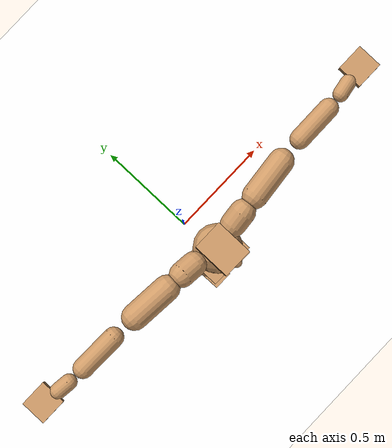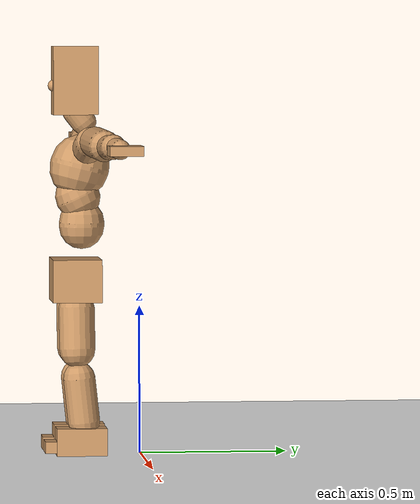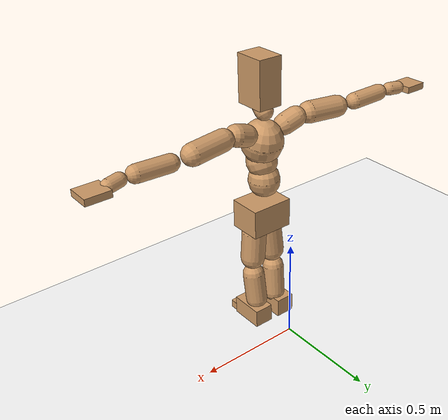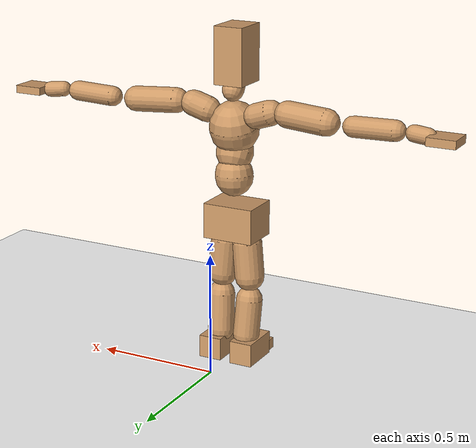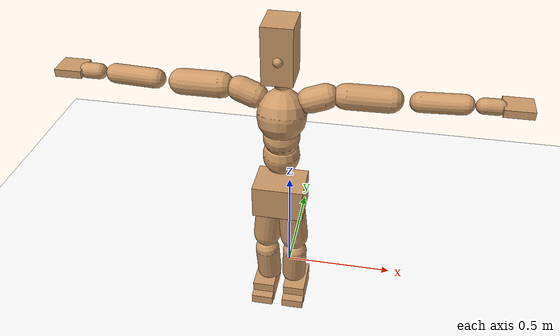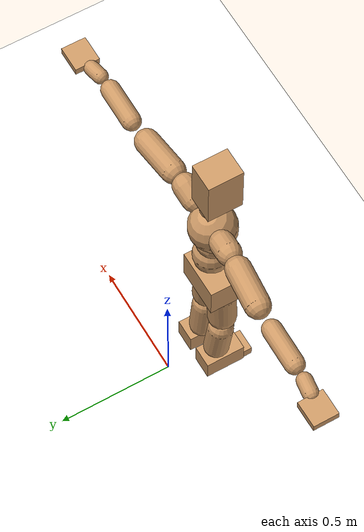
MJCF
<mujoco model="humanoid">
  <option integrator="implicitfast" />

  <visual>
    <global offwidth="1280" offheight="960" />
    <headlight active="1" ambient="0.34 0.34 0.34" diffuse="0.5 0.5 0.5" />
  </visual>

  <default>
    <joint damping="2" stiffness="2" armature="0.01" limited="true" solimplimit="0 .99 .01" />
    <geom condim="1" friction="0.7 0.005 0.0001" solimp=".99 .99 .003" solref="0.015 1" margin="0.001" rgba="0.8 0.6 .4 1" />
    <default class="smplcontact">
      <geom condim="3" friction="1. 0.005 0.0001" solref="0.015 1" solimp="0.98 0.98 0.001" priority="1" />
    </default>
    <default class="stiff_medium">
      <joint stiffness="10" />
    </default>
    <default class="stiff_medium_higher">
      <joint stiffness="50" />
    </default>
    <default class="stiff_high">
      <joint stiffness="100" />
    </default>
  </default>

  <asset>
    <texture type="skybox" builtin="gradient" rgb1="0.99 0.99 0.99" rgb2="0.608 0.828 0.892" width="100" />
    <texture builtin="flat" height="1278" mark="cross" markrgb="1 1 1" name="texgeom" random="0.01" rgb1="0.8 0.6 0.4" rgb2="0.8 0.6 0.4" type="cube" width="127" />
    <texture name="texplane" type="2d" builtin="checker" markrgb="1 1 1" rgb1="0.756 0.772 0.76" rgb2="0.6 0.6 0.6" width="100" height="100" />
    <material name="MatPlane" reflectance="0.5" texture="texplane" texrepeat="1 1" texuniform="true" />
    <material name="geom" texture="texgeom" texuniform="true" />
  </asset>

  <worldbody>
    <light name="tracking_light" pos="0 0 7" dir="0 0 -1" directional="true" cutoff="100" exponent="1" diffuse="1 1 1" specular="0.1 0.1 0.1" mode="trackcom" />
    <camera name="back" pos="0 3 2.4" xyaxes="-1 0 0 0 -1 2" mode="trackcom" />
    <camera name="side" pos="-3 0 2.4" xyaxes="0 -1 0 1 0 2" mode="trackcom" />
    <camera name="front_side" pos="-2.8 -2.8 0.8" xyaxes="0.5 -0.5 0 0.1 0.1 1" mode="trackcom" />
    <geom condim="3" name="floor" pos="0 0 0" rgba="1 1 1 1" size="100 100 .2" type="plane" material="MatPlane" />
    <body name="Pelvis" pos="-0.0018 -0.2233 0.603363" euler="90 0 0">
      <site name="Pelvis" size="0.01" />
      <freejoint name="Pelvis" />
      <geom type="box" pos="-0.0000 -0.0121 -0.0055" size="0.1069 0.0722 0.083" quat="1.0000 0.0000 0.0000 0.0000" density="3165.830099" name="Pelvis" />
      <body name="L_Hip" pos="0.0434375 -0.057125 -0.00425">
        <joint name="L_Hip_x" type="hinge" pos="0 0 0" axis="1 0 0" stiffness="4.682612346938775" range="-160.0 22.92" class="stiff_medium" damping="5.7613760632592355" armature="0.0031505162487152163"/>
        <joint name="L_Hip_y" type="hinge" pos="0 0 0" axis="0 1 0" stiffness="4.729285204081632" range="-70.0 70.0" class="stiff_medium" damping="5.227190951440424" armature="0.005777516910851336"/>
        <joint name="L_Hip_z" type="hinge" pos="0 0 0" axis="0 0 1" stiffness="4.725288673469388" range="-28.65 90.0" class="stiff_medium" damping="3.855798953286389" armature="0.003146302077085308"/>
        <geom type="capsule" density="2040.816327" fromto="0.0043125 -0.046875 -0.0005625 0.017125 -0.187625 -0.00225" size="0.0615" name="L_Hip" />
        <body name="L_Knee" pos="0.0214375 -0.2345 -0.0028125">
          <joint name="L_Knee_x" type="hinge" pos="0 0 0" axis="1 0 0" range="-5.16 171.89" damping="3.314776765383125" armature="0.00346820550097493" stiffness="0.9900423469387756"/>
          <joint name="L_Knee_y" type="hinge" pos="0 0 0" axis="0 1 0" range="-4.58 6.88" damping="4.406653617352899" armature="0.006327520325715423" stiffness="0.9590346565349543"/>
          <joint name="L_Knee_z" type="hinge" pos="0 0 0" axis="0 0 1" range="-6.88 4.58" damping="3.327252622723649" armature="0.003445606353385671" stiffness="1.0040513265306124"/>
          <geom type="capsule" density="1234.567901" fromto="-0.0016875 -0.04975 -0.0054375 -0.0068125 -0.199 -0.021875" size="0.0541" name="L_Knee" />
          <body name="L_Ankle" pos="-0.0085 -0.24875 -0.0273125">
            <joint name="L_Ankle_x" type="hinge" pos="0 0 0" axis="1 0 0" range="-45.84 45.84" class="stiff_medium" damping="3.671773608490043" armature="0.005991965080890664" stiffness="6.25"/>
            <joint name="L_Ankle_y" type="hinge" pos="0 0 0" axis="0 1 0" range="-74.48 22.92" class="stiff_medium" damping="1.8585891029846908" armature="0.006141072806637222" stiffness="6.25"/>
            <joint name="L_Ankle_z" type="hinge" pos="0 0 0" axis="0 0 1" range="-4.58 4.58" class="stiff_medium" damping="4.001717943795416" armature="0.007117220667419648" stiffness="6.25"/>
            <geom type="box" pos="0.0145625 -0.0149375 0.015125" size="0.0483 0.0464 0.085" quat="1.0000 0.0000 0.0000 0.0000" density="449.071558" name="L_Ankle" class="smplcontact" />
            <body name="L_Toe" pos="0.0165 -0.034875 0.0745625">
              <joint name="L_Toe_x" type="hinge" pos="0 0 0" axis="1 0 0" range="-91.67 22.92" armature="0.007683229914737001" damping="1.3859319891986945" stiffness="1.25"/>
              <joint name="L_Toe_y" type="hinge" pos="0 0 0" axis="0 1 0" range="-4.58 4.58" armature="0.008367648440754674" damping="1.446344395428927" stiffness="1.25"/>
              <joint name="L_Toe_z" type="hinge" pos="0 0 0" axis="0 0 1" range="-4.58 4.58" armature="0.009751505861704313" damping="1.5613700603720049" stiffness="1.25"/>
              <geom type="box" pos="-0.001875 0.0034375 0.0155" size="0.0478 0.02 0.0496" quat="1.0000 0.0000 0.0000 0.0000" density="423.206892" name="L_Toe" class="smplcontact" />
            </body>
          </body>
        </body>
      </body>
      <body name="R_Hip" pos="-0.0423125 -0.0565625 -0.0026875">
        <joint name="R_Hip_x" type="hinge" pos="0 0 0" axis="1 0 0" stiffness="4.682612346938775" range="-160.0 22.92" class="stiff_medium" damping="5.7613760632592355" armature="0.0031505162487152163"/>
        <joint name="R_Hip_y" type="hinge" pos="0 0 0" axis="0 1 0" stiffness="4.729285204081632" range="-70.0 70.0" class="stiff_medium" damping="5.227190951440424" armature="0.005777516910851336"/>
        <joint name="R_Hip_z" type="hinge" pos="0 0 0" axis="0 0 1" stiffness="4.725288673469388" range="-90.0 28.65" class="stiff_medium" damping="3.855798953286389" armature="0.003146302077085308"/>
        <geom type="capsule" density="2040.816327" fromto="-0.0048125 -0.0478125 -0.001125 -0.019125 -0.191312 -0.0044375" size="0.0606" name="R_Hip" />
        <body name="R_Knee" pos="-0.0239375 -0.239125 -0.0055625">
          <joint name="R_Knee_x" type="hinge" pos="0 0 0" axis="1 0 0" range="-5.16 171.89" damping="3.314776765383125" armature="0.00346820550097493" stiffness="0.9900423469387756"/>
          <joint name="R_Knee_y" type="hinge" pos="0 0 0" axis="0 1 0" range="-6.88 4.58" damping="4.406653617352899" armature="0.006327520325715423" stiffness="0.9590346565349543"/>
          <joint name="R_Knee_z" type="hinge" pos="0 0 0" axis="0 0 1" range="-4.58 6.88" damping="3.327252622723649" armature="0.003445606353385671" stiffness="1.0040513265306124"/>
          <geom type="capsule" density="1234.567901" fromto="0.002 -0.0498125 -0.0053125 0.007875 -0.199187 -0.021125" size="0.0541" name="R_Knee" />
          <body name="R_Ankle" pos="0.009875 -0.249 -0.0264375">
            <joint name="R_Ankle_x" type="hinge" pos="0 0 0" axis="1 0 0" range="-45.84 45.84" class="stiff_medium" damping="3.671773608490043" armature="0.005991965080890664" stiffness="6.25"/>
            <joint name="R_Ankle_y" type="hinge" pos="0 0 0" axis="0 1 0" range="-22.92 74.48" class="stiff_medium" damping="1.8585891029846908" armature="0.006141072806637222" stiffness="6.25"/>
            <joint name="R_Ankle_z" type="hinge" pos="0 0 0" axis="0 0 1" range="-4.58 4.58" class="stiff_medium" damping="4.001717943795416" armature="0.007117220667419648" stiffness="6.25"/>
            <geom type="box" pos="-0.01325 -0.010875 0.016" size="0.0483 0.0478 0.0865" quat="1.0000 0.0000 0.0000 0.0000" density="434.700981" name="R_Ankle" class="smplcontact" />
            <body name="R_Toe" pos="-0.015875 -0.0300625 0.0770625">
              <joint name="R_Toe_x" type="hinge" pos="0 0 0" axis="1 0 0" range="-91.67 22.92" armature="0.007683229914737001" damping="1.3859319891986945" stiffness="1.25"/>
              <joint name="R_Toe_y" type="hinge" pos="0 0 0" axis="0 1 0" range="-4.58 4.58" armature="0.008367648440754674" damping="1.446344395428927" stiffness="1.25"/>
              <joint name="R_Toe_z" type="hinge" pos="0 0 0" axis="0 0 1" range="-4.58 4.58" armature="0.009751505861704313" damping="1.5613700603720049" stiffness="1.25"/>
              <geom type="box" pos="0.002625 0.0028125 0.0141875" size="0.0479 0.0216 0.0493" quat="1.0000 0.0000 0.0000 0.0000" density="407.384095" name="R_Toe" class="smplcontact" />
            </body>
          </body>
        </body>
      </body>
      <body name="Torso" pos="-0.0025 0.109 -0.0267">
        <joint name="Torso_x" type="hinge" pos="0 0 0" axis="1 0 0" range="-25.78 57.3" class="stiff_medium" damping="15.601174334598205" armature="0.010476265558935367" stiffness="10.325844081632653"/>
        <joint name="Torso_y" type="hinge" pos="0 0 0" axis="0 1 0" range="-57.3 57.3" class="stiff_high" damping="22.821338610517834" armature="0.012668353656497757" stiffness="102.77844897959183"/>
        <joint name="Torso_z" type="hinge" pos="0 0 0" axis="0 0 1" range="-34.38 34.38" class="stiff_high" damping="21.414857312023496" armature="0.011223378132891131" stiffness="102.15197872340424"/>
        <geom type="capsule" density="2040.816327" fromto="0.0025 0.0608 0.0005 0.003 0.0743 0.0006" size="0.0769" name="Torso" />
        <body name="Spine" pos="0.0055 0.1352 0.0011">
          <joint name="Spine_x" type="hinge" pos="0 0 0" axis="1 0 0" stiffness="10.390365918367348" range="-25.78 57.3" class="stiff_medium" damping="15.726774537984083" armature="0.010579519926301025"/>
          <joint name="Spine_y" type="hinge" pos="0 0 0" axis="0 1 0" stiffness="10.39918551020408" range="-57.3 57.3" class="stiff_high" damping="9.18896997574016" armature="0.012686866367473133"/>
          <joint name="Spine_z" type="hinge" pos="0 0 0" axis="0 0 1" stiffness="20.94420693877551" range="-34.38 34.38" class="stiff_high" damping="13.309204568844793" armature="0.011746481097584327"/>
          <geom type="capsule" density="2040.816327" fromto="0.0007 0.0238 0.0114 0.0008 0.0291 0.014" size="0.0755" name="Spine" />
          <body name="Chest" pos="0.0015 0.0529 0.0254">
            <joint name="Chest_x" type="hinge" pos="0 0 0" axis="1 0 0" stiffness="10.58973530612245" range="-25.78 57.3" class="stiff_medium" damping="15.923502909070246" armature="0.010641665414267268"/>
            <joint name="Chest_y" type="hinge" pos="0 0 0" axis="0 1 0" stiffness="11.123088958333334" range="-57.3 57.3" class="stiff_high" damping="9.504893386205909" armature="0.01269080336821822"/>
            <joint name="Chest_z" type="hinge" pos="0 0 0" axis="0 0 1" stiffness="21.003702448979592" range="-34.38 34.38" class="stiff_high" damping="13.458190566120907" armature="0.011976915720374785"/>
            <geom type="capsule" density="2040.816327" fromto="-0.0009 0.0682 -0.0173 -0.001 0.0833 -0.0212" size="0.1002" name="Chest" />
            <body name="Neck" pos="-0.0028 0.2139 -0.0429">
              <joint name="Neck_x" type="hinge" pos="0 0 0" axis="1 0 0" range="-28.65 57.3" class="stiff_medium_higher" damping="9.999999999999993" armature="0.009999999999999988" stiffness="50.0"/>
              <joint name="Neck_y" type="hinge" pos="0 0 0" axis="0 1 0" range="-40.11 40.11" class="stiff_medium_higher" damping="10.0" armature="0.01" stiffness="50.0"/>
              <joint name="Neck_z" type="hinge" pos="0 0 0" axis="0 0 1" range="-40.11 40.11" class="stiff_medium_higher" damping="9.999999999999988" armature="0.009999999999999976" stiffness="50.0"/>
              <geom type="capsule" density="1000" fromto="0.001 0.013 0.0103 0.0041 0.052 0.0411" size="0.0436" name="Neck" />
              <body name="Head" pos="0.0052 0.065 0.0513">
                <joint name="Head_x" type="hinge" pos="0 0 0" axis="1 0 0" range="-28.65 57.3" class="stiff_medium_higher" damping="1.9999999999999967" armature="0.009999999999999967" stiffness="50.0"/>
                <joint name="Head_y" type="hinge" pos="0 0 0" axis="0 1 0" range="-40.11 40.11" class="stiff_medium_higher" damping="1.9999999999999998" armature="0.009999999999999998" stiffness="50.0"/>
                <joint name="Head_z" type="hinge" pos="0 0 0" axis="0 0 1" range="-40.11 40.11" class="stiff_medium_higher" damping="1.999999999999996" armature="0.009999999999999962" stiffness="50.0"/>
                <geom type="box" pos="-0.0042 0.0876 -0.0116" size="0.0606 0.1154 0.076" quat="1.0000 0.0000 0.0000 0.0000" density="1018.069894" name="Head" />
                <geom type="capsule" name="nose" size="0.02 0.01" pos="0 0.07 0.05" quat="1 0 0 0" mass="0" contype="0" conaffinity="0" />
              </body>
            </body>
            <body name="L_Thorax" pos="0.08668 0.13387 -0.03751">
              <joint name="L_Thorax_x" type="hinge" pos="0 0 0" axis="1 0 0" range="-10.89 4.58" class="stiff_medium_higher" damping="23.484953053517316" armature="0.011814903262347187" stiffness="58.352468877551026"/>
              <joint name="L_Thorax_y" type="hinge" pos="0 0 0" axis="0 1 0" range="-28.65 17.19" class="stiff_medium_higher" damping="24.434884191521103" armature="0.012759387174304943" stiffness="58.49257857142858"/>
              <joint name="L_Thorax_z" type="hinge" pos="0 0 0" axis="0 0 1" range="-31.51 40.11" class="stiff_medium_higher" damping="24.435380867856832" armature="0.012760243243334086" stiffness="58.491032142857144"/>
              <geom type="capsule" density="1000" fromto="0.02002 0.00671 -0.00198 0.08008 0.02684 -0.00781" size="0.0521" name="L_Thorax" />
              <body name="L_Shoulder" pos="0.1001 0.03355 -0.00979">
                <joint name="L_Shoulder_x" type="hinge" pos="0 0 0" axis="1 0 0" range="-97.4 97.4" class="stiff_medium" damping="6.925509502214" armature="0.01143614113174852" stiffness="11.64988"/>
                <joint name="L_Shoulder_y" type="hinge" pos="0 0 0" axis="0 1 0" range="-108.86 80.21" class="stiff_medium" damping="7.316560324521945" armature="0.012722359703116887" stiffness="11.68809530612245"/>
                <joint name="L_Shoulder_z" type="hinge" pos="0 0 0" axis="0 0 1" range="-97.4 85.94" class="stiff_medium" damping="7.316164081346805" armature="0.01272343570206763" stiffness="11.685841020408162"/>
                <geom type="capsule" density="1000" fromto="0.05709 -0.00286 -0.00605 0.22847 -0.01122 -0.0242" size="0.0517" name="L_Shoulder" />
                <body name="L_Elbow" pos="0.28556 -0.01408 -0.03025">
                  <joint name="L_Elbow_x" type="hinge" pos="0 0 0" axis="1 0 0" range="-17.19 4.58" damping="5.6013963449448765" armature="0.010847020977713008" stiffness="2.314046673469388"/>
                  <joint name="L_Elbow_y" type="hinge" pos="0 0 0" axis="0 1 0" range="-180.0 17.19" damping="6.023798480907978" armature="0.012542680731684361" stiffness="2.3144110204081634"/>
                  <joint name="L_Elbow_z" type="hinge" pos="0 0 0" axis="0 0 1" range="-100.84 4.58" damping="6.024346472417808" armature="0.012548321640758909" stiffness="2.313791530612245"/>
                  <geom type="capsule" density="1000" fromto="0.05478 0.00198 -0.00022 0.21934 0.00792 -0.00099" size="0.0405" name="L_Elbow" />
                  <body name="L_Wrist" pos="0.27412 0.0099 -0.00132">
                    <joint name="L_Wrist_x" type="hinge" pos="0 0 0" axis="1 0 0" range="-180.0 22.92" armature="0.010707540477697492" damping="2.1901175856847654" stiffness="2.2398304489795917"/>
                    <joint name="L_Wrist_y" type="hinge" pos="0 0 0" axis="0 1 0" range="-17.19 17.19" armature="0.011962634992803312" damping="2.3179387965844542" stiffness="2.245675918367347"/>
                    <joint name="L_Wrist_z" type="hinge" pos="0 0 0" axis="0 0 1" range="-22.92 22.92" armature="0.012031856829646057" damping="2.3234148559287777" stiffness="2.2433181632653056"/>
                    <geom type="capsule" density="1000" fromto="0.01848 -0.00176 -0.0033 0.07392 -0.00715 -0.0132" size="0.0318" name="L_Wrist" class="smplcontact" />
                    <body name="L_Hand" pos="0.0924 -0.00902 -0.01639">
                      <joint name="L_Hand_x" type="hinge" pos="0 0 0" axis="1 0 0" range="-17.19 17.19" armature="0.01009148893709301" damping="2.1071912899214738" stiffness="2.1999999999999997"/>
                      <joint name="L_Hand_y" type="hinge" pos="0 0 0" axis="0 1 0" range="-51.57 51.57" armature="0.011106432471592468" damping="2.2106176258006913" stiffness="2.1999999999999997"/>
                      <joint name="L_Hand_z" type="hinge" pos="0 0 0" axis="0 0 1" range="-91.67 91.67" armature="0.011376979537969447" damping="2.237380387128339" stiffness="2.1999999999999997"/>
                      <geom type="box" pos="0.05423 0.0011 -0.00638" size="0.0585 0.0158 0.0538" quat="1.0000 0.0000 0.0000 0.0000" density="400.552564" name="L_Hand" class="smplcontact" />
                    </body>
                  </body>
                </body>
              </body>
            </body>
            <body name="R_Thorax" pos="-0.08998 0.13068 -0.04246">
              <joint name="R_Thorax_x" type="hinge" pos="0 0 0" axis="1 0 0" range="-10.89 4.58" class="stiff_medium_higher" damping="23.484953053517316" armature="0.011814903262347187" stiffness="58.352468877551026"/>
              <joint name="R_Thorax_y" type="hinge" pos="0 0 0" axis="0 1 0" range="-17.19 28.65" class="stiff_medium_higher" damping="24.434884191521103" armature="0.012759387174304943" stiffness="58.49257857142858"/>
              <joint name="R_Thorax_z" type="hinge" pos="0 0 0" axis="0 0 1" range="-40.11 31.51" class="stiff_medium_higher" damping="24.435380867856832" armature="0.012760243243334086" stiffness="58.491032142857144"/>
              <geom type="capsule" density="1000" fromto="-0.02112 0.00715 -0.00198 -0.08448 0.0286 -0.00803" size="0.0511" name="R_Thorax" />
              <body name="R_Shoulder" pos="-0.1056 0.03586 -0.01001">
                <joint name="R_Shoulder_x" type="hinge" pos="0 0 0" axis="1 0 0" range="-97.4 97.4" class="stiff_medium" damping="6.925509502214" armature="0.01143614113174852" stiffness="11.64988"/>
                <joint name="R_Shoulder_y" type="hinge" pos="0 0 0" axis="0 1 0" range="-80.21 108.86" class="stiff_medium" damping="7.316560324521945" armature="0.012722359703116887" stiffness="11.68809530612245"/>
                <joint name="R_Shoulder_z" type="hinge" pos="0 0 0" axis="0 0 1" range="-85.94 97.4" class="stiff_medium" damping="7.316164081346805" armature="0.01272343570206763" stiffness="11.685841020408162"/>
                <geom type="capsule" density="1000" fromto="-0.05577 -0.00297 -0.00473 -0.2233 -0.01177 -0.01881" size="0.0531" name="R_Shoulder" />
                <body name="R_Elbow" pos="-0.27907 -0.01463 -0.02354">
                  <joint name="R_Elbow_x" type="hinge" pos="0 0 0" axis="1 0 0" range="-17.19 4.58" damping="5.6013963449448765" armature="0.010847020977713008" stiffness="2.314046673469388"/>
                  <joint name="R_Elbow_y" type="hinge" pos="0 0 0" axis="0 1 0" range="-17.19 180.0" damping="6.023798480907978" armature="0.012542680731684361" stiffness="2.3144110204081634"/>
                  <joint name="R_Elbow_z" type="hinge" pos="0 0 0" axis="0 0 1" range="-4.58 100.84" damping="6.024346472417808" armature="0.012548321640758909" stiffness="2.313791530612245"/>
                  <geom type="capsule" density="1000" fromto="-0.05621 0.00176 -0.00121 -0.22462 0.00682 -0.00484" size="0.0408" name="R_Elbow" />
                  <body name="R_Wrist" pos="-0.28083 0.00858 -0.00616">
                    <joint name="R_Wrist_x" type="hinge" pos="0 0 0" axis="1 0 0" range="-180.0 22.92" armature="0.010707540477697492" damping="2.1901175856847654" stiffness="2.2398304489795917"/>
                    <joint name="R_Wrist_y" type="hinge" pos="0 0 0" axis="0 1 0" range="-17.19 17.19" armature="0.011962634992803312" damping="2.3179387965844542" stiffness="2.245675918367347"/>
                    <joint name="R_Wrist_z" type="hinge" pos="0 0 0" axis="0 0 1" range="-22.92 22.92" armature="0.012031856829646057" damping="2.3234148559287777" stiffness="2.2433181632653056"/>
                    <geom type="capsule" density="1000" fromto="-0.01859 -0.00132 -0.00231 -0.07447 -0.00539 -0.00913" size="0.0326" name="R_Wrist" class="smplcontact" />
                    <body name="R_Hand" pos="-0.09306 -0.00671 -0.01133">
                      <joint name="R_Hand_x" type="hinge" pos="0 0 0" axis="1 0 0" range="-17.19 17.19" armature="0.01009148893709301" damping="2.1071912899214738" stiffness="2.1999999999999997"/>
                      <joint name="R_Hand_y" type="hinge" pos="0 0 0" axis="0 1 0" range="-51.57 51.57" armature="0.011106432471592468" damping="2.2106176258006913" stiffness="2.1999999999999997"/>
                      <joint name="R_Hand_z" type="hinge" pos="0 0 0" axis="0 0 1" range="-91.67 91.67" armature="0.011376979537969447" damping="2.237380387128339" stiffness="2.1999999999999997"/>
                      <geom type="box" pos="-0.05082 -0.00099 -0.00869" size="0.0569 0.0164 0.0546" quat="1.0000 0.0000 0.0000 0.0000" density="403.679611" name="R_Hand" class="smplcontact" />
                    </body>
                  </body>
                </body>
              </body>
            </body>
          </body>
        </body>
      </body>
    </body>
  </worldbody>
  <actuator>
    <general name="L_Hip_x" joint="L_Hip_x" biastype="affine" gainprm="134.5455305788832" biasprm="-100.82823820114426 -84.28702224489795 -0.7681834751012314" ctrllimited="true" ctrlrange="-1 1" forcerange="-168.5740444897959 168.5740444897959" />
    <general name="L_Hip_y" joint="L_Hip_y" biastype="affine" gainprm="104.00241357711633" biasprm="0.0 -85.12713367346939 -1.0454381902880847" ctrllimited="true" ctrlrange="-1 1" forcerange="-170.25426734693878 170.25426734693878" />
    <general name="L_Hip_z" joint="L_Hip_z" biastype="affine" gainprm="88.0675601736452" biasprm="45.53682947031718 -85.05519612244898 -0.7711597906572778" ctrllimited="true" ctrlrange="-1 1" forcerange="-170.11039224489795 170.11039224489795" />
    <general name="L_Knee_x" joint="L_Knee_x" biastype="affine" gainprm="137.6700859239888" biasprm="129.64548673316378 -89.1038112244898 -0.8286941913457813" ctrllimited="true" ctrlrange="-1 1" forcerange="-178.2076224489796 178.2076224489796" />
    <general name="L_Knee_y" joint="L_Knee_y" biastype="affine" gainprm="8.63194770327106" biasprm="1.7324153331172283 -86.3131190881459 -1.1016634043382247" ctrllimited="true" ctrlrange="-1 1" forcerange="-172.6262381762918 172.6262381762918" />
    <general name="L_Knee_z" joint="L_Knee_z" biastype="affine" gainprm="9.03712757714746" biasprm="-1.8137341559720035 -90.36461938775511 -0.8318131556809123" ctrllimited="true" ctrlrange="-1 1" forcerange="-180.72923877551023 180.72923877551023" />
    <general name="L_Ankle_x" joint="L_Ankle_x" biastype="affine" gainprm="45.003314762673796" biasprm="0.0 -56.25 -1.2239245361633477" ctrllimited="true" ctrlrange="-1 1" forcerange="-112.5 112.5" />
    <general name="L_Ankle_y" joint="L_Ankle_y" biastype="affine" gainprm="47.811113196819676" biasprm="-25.309455815482774 -56.25 -1.2390594019897938" ctrllimited="true" ctrlrange="-1 1" forcerange="-112.5 112.5" />
    <general name="L_Ankle_z" joint="L_Ankle_z" biastype="affine" gainprm="4.496404485450391" biasprm="0.0 -56.25 -1.3339059812651386" ctrllimited="true" ctrlrange="-1 1" forcerange="-112.5 112.5" />
    <general name="L_Toe_x" joint="L_Toe_x" biastype="affine" gainprm="44.999387771856796" biasprm="-26.998061866787282 -45.0 -0.5543727956794778" ctrllimited="true" ctrlrange="-1 1" forcerange="-90.0 90.0" />
    <general name="L_Toe_y" joint="L_Toe_y" biastype="affine" gainprm="3.597123588360313" biasprm="0.0 -45.0 -0.5785377581715708" ctrllimited="true" ctrlrange="-1 1" forcerange="-90.0 90.0" />
    <general name="L_Toe_z" joint="L_Toe_z" biastype="affine" gainprm="3.597123588360313" biasprm="0.0 -45.0 -0.624548024148802" ctrllimited="true" ctrlrange="-1 1" forcerange="-90.0 90.0" />
    <general name="R_Hip_x" joint="R_Hip_x" biastype="affine" gainprm="134.5455305788832" biasprm="-100.82823820114426 -84.28702224489795 -0.7681834751012314" ctrllimited="true" ctrlrange="-1 1" forcerange="-168.5740444897959 168.5740444897959" />
    <general name="R_Hip_y" joint="R_Hip_y" biastype="affine" gainprm="104.00241357711633" biasprm="0.0 -85.12713367346939 -1.0454381902880847" ctrllimited="true" ctrlrange="-1 1" forcerange="-170.25426734693878 170.25426734693878" />
    <general name="R_Hip_z" joint="R_Hip_z" biastype="affine" gainprm="88.0675601736452" biasprm="-45.53682947031718 -85.05519612244898 -0.7711597906572778" ctrllimited="true" ctrlrange="-1 1" forcerange="-170.11039224489795 170.11039224489795" />
    <general name="R_Knee_x" joint="R_Knee_x" biastype="affine" gainprm="137.6700859239888" biasprm="129.64548673316378 -89.1038112244898 -0.8286941913457813" ctrllimited="true" ctrlrange="-1 1" forcerange="-178.2076224489796 178.2076224489796" />
    <general name="R_Knee_y" joint="R_Knee_y" biastype="affine" gainprm="8.63194770327106" biasprm="-1.7324153331172283 -86.3131190881459 -1.1016634043382247" ctrllimited="true" ctrlrange="-1 1" forcerange="-172.6262381762918 172.6262381762918" />
    <general name="R_Knee_z" joint="R_Knee_z" biastype="affine" gainprm="9.03712757714746" biasprm="1.8137341559720035 -90.36461938775511 -0.8318131556809123" ctrllimited="true" ctrlrange="-1 1" forcerange="-180.72923877551023 180.72923877551023" />
    <general name="R_Ankle_x" joint="R_Ankle_x" biastype="affine" gainprm="45.003314762673796" biasprm="0.0 -56.25 -1.2239245361633477" ctrllimited="true" ctrlrange="-1 1" forcerange="-112.5 112.5" />
    <general name="R_Ankle_y" joint="R_Ankle_y" biastype="affine" gainprm="47.811113196819676" biasprm="25.309455815482774 -56.25 -1.2390594019897938" ctrllimited="true" ctrlrange="-1 1" forcerange="-112.5 112.5" />
    <general name="R_Ankle_z" joint="R_Ankle_z" biastype="affine" gainprm="4.496404485450391" biasprm="0.0 -56.25 -1.3339059812651386" ctrllimited="true" ctrlrange="-1 1" forcerange="-112.5 112.5" />
    <general name="R_Toe_x" joint="R_Toe_x" biastype="affine" gainprm="44.999387771856796" biasprm="-26.998061866787282 -45.0 -0.5543727956794778" ctrllimited="true" ctrlrange="-1 1" forcerange="-90.0 90.0" />
    <general name="R_Toe_y" joint="R_Toe_y" biastype="affine" gainprm="3.597123588360313" biasprm="0.0 -45.0 -0.5785377581715708" ctrllimited="true" ctrlrange="-1 1" forcerange="-90.0 90.0" />
    <general name="R_Toe_z" joint="R_Toe_z" biastype="affine" gainprm="3.597123588360313" biasprm="0.0 -45.0 -0.624548024148802" ctrllimited="true" ctrlrange="-1 1" forcerange="-90.0 90.0" />
    <general name="Torso_x" joint="Torso_x" biastype="affine" gainprm="179.67210854115288" biasprm="68.16640420338393 -247.8202579591837 -4.1603131558928546" ctrllimited="true" ctrlrange="-1 1" forcerange="-371.73038693877555 371.73038693877555" />
    <general name="Torso_y" joint="Torso_y" biastype="affine" gainprm="246.68644747989222" biasprm="0.0 -246.6682775510204 -4.564267722103567" ctrllimited="true" ctrlrange="-1 1" forcerange="-370.0024163265306 370.0024163265306" />
    <general name="Torso_z" joint="Torso_z" biastype="affine" gainprm="147.10968486781817" biasprm="0.0 -245.16474893617018 -4.282971462404699" ctrllimited="true" ctrlrange="-1 1" forcerange="-367.74712340425526 367.74712340425526" />
    <general name="Spine_x" joint="Spine_x" biastype="affine" gainprm="180.79480363139655" biasprm="68.5923472612135 -249.36878204081634 -4.193806543462422" ctrllimited="true" ctrlrange="-1 1" forcerange="-374.0531730612245 374.0531730612245" />
    <general name="Spine_y" joint="Spine_y" biastype="affine" gainprm="249.59883668861366" biasprm="0.0 -249.58045224489794 -4.59448498787008" ctrllimited="true" ctrlrange="-1 1" forcerange="-374.3706783673469 374.3706783673469" />
    <general name="Spine_z" joint="Spine_z" biastype="affine" gainprm="150.8093979712465" biasprm="0.0 -251.3304832653061 -4.436401522948264" ctrllimited="true" ctrlrange="-1 1" forcerange="-376.9957248979592 376.9957248979592" />
    <general name="Chest_x" joint="Chest_x" biastype="affine" gainprm="184.26387773258654" biasprm="69.90849092598852 -254.15364734693878 -4.246267442418732" ctrllimited="true" ctrlrange="-1 1" forcerange="-381.2304710204082 381.2304710204082" />
    <general name="Chest_y" joint="Chest_y" biastype="affine" gainprm="266.97379921338467" biasprm="0.0 -266.954135 -4.7524466931029545" ctrllimited="true" ctrlrange="-1 1" forcerange="-400.43120250000004 400.43120250000004" />
    <general name="Chest_z" joint="Chest_z" biastype="affine" gainprm="151.23779719887534" biasprm="0.0 -252.0444293877551 -4.486063522040302" ctrllimited="true" ctrlrange="-1 1" forcerange="-378.06664408163266 378.06664408163266" />
    <general name="Neck_x" joint="Neck_x" biastype="affine" gainprm="27.00198885760427" biasprm="9.000662952534757 -36.0 -0.7999999999999995" ctrllimited="true" ctrlrange="-1 1" forcerange="-72.0 72.0" />
    <general name="Neck_y" joint="Neck_y" biastype="affine" gainprm="25.20185626709732" biasprm="0.0 -36.0 -0.8" ctrllimited="true" ctrlrange="-1 1" forcerange="-72.0 72.0" />
    <general name="Neck_z" joint="Neck_z" biastype="affine" gainprm="25.20185626709732" biasprm="0.0 -36.0 -0.799999999999999" ctrllimited="true" ctrlrange="-1 1" forcerange="-72.0 72.0" />
    <general name="Head_x" joint="Head_x" biastype="affine" gainprm="18.001325905069514" biasprm="6.000441968356505 -24.0 -0.7999999999999987" ctrllimited="true" ctrlrange="-1 1" forcerange="-48.0 48.0" />
    <general name="Head_y" joint="Head_y" biastype="affine" gainprm="16.801237511398213" biasprm="0.0 -24.0 -0.7999999999999999" ctrllimited="true" ctrlrange="-1 1" forcerange="-48.0 48.0" />
    <general name="Head_z" joint="Head_z" biastype="affine" gainprm="16.801237511398213" biasprm="0.0 -24.0 -0.7999999999999985" ctrllimited="true" ctrlrange="-1 1" forcerange="-48.0 48.0" />
    <general name="L_Thorax_x" joint="L_Thorax_x" biastype="affine" gainprm="18.906370442093692" biasprm="-7.711648189373708 -140.04592530612246 -1.8787962442813855" ctrllimited="true" ctrlrange="-1 1" forcerange="-280.0918506122449 280.0918506122449" />
    <general name="L_Thorax_y" joint="L_Thorax_y" biastype="affine" gainprm="56.157011727582464" biasprm="-14.039252931895616 -140.38218857142857 -1.9547907353216882" ctrllimited="true" ctrlrange="-1 1" forcerange="-280.76437714285714 280.76437714285714" />
    <general name="L_Thorax_z" joint="L_Thorax_z" biastype="affine" gainprm="87.73688584405964" biasprm="10.535286487837375 -140.37847714285715 -1.9548304694285468" ctrllimited="true" ctrlrange="-1 1" forcerange="-280.7569542857143 280.7569542857143" />
    <general name="L_Shoulder_x" joint="L_Shoulder_x" biastype="affine" gainprm="95.06026349386505" biasprm="0.0 -55.91942399999999 -1.8468025339237333" ctrllimited="true" ctrlrange="-1 1" forcerange="-111.83884799999998 111.83884799999998" />
    <general name="L_Shoulder_y" joint="L_Shoulder_y" biastype="affine" gainprm="92.56674184278414" biasprm="-14.026747521001564 -56.10285746938776 -1.9510827532058521" ctrllimited="true" ctrlrange="-1 1" forcerange="-112.20571493877551 112.20571493877551" />
    <general name="L_Shoulder_z" joint="L_Shoulder_z" biastype="affine" gainprm="89.7440800375507" biasprm="-5.609616871551944 -56.09203689795918 -1.9509770883591484" ctrllimited="true" ctrlrange="-1 1" forcerange="-112.18407379591837 112.18407379591837" />
    <general name="L_Elbow_x" joint="L_Elbow_x" biastype="affine" gainprm="15.82633724808071" biasprm="-9.167207749117953 -83.30568024489797 -0.8962234151911803" ctrllimited="true" ctrlrange="-1 1" forcerange="-166.61136048979594 166.61136048979594" />
    <general name="L_Elbow_y" joint="L_Elbow_y" biastype="affine" gainprm="143.37559998082332" biasprm="-118.37811974683223 -83.31879673469388 -0.9638077569452765" ctrllimited="true" ctrlrange="-1 1" forcerange="-166.63759346938775 166.63759346938775" />
    <general name="L_Elbow_z" joint="L_Elbow_z" biastype="affine" gainprm="76.62969758228138" biasprm="-69.9713023076305 -83.29649510204082 -0.9638954355868494" ctrllimited="true" ctrlrange="-1 1" forcerange="-166.59299020408164 166.59299020408164" />
    <general name="L_Wrist_x" joint="L_Wrist_x" biastype="affine" gainprm="23.797899177015026" biasprm="-18.421910125791054 -13.43898269387755 -0.8760470342739062" ctrllimited="true" ctrlrange="-1 1" forcerange="-26.8779653877551 26.8779653877551" />
    <general name="L_Wrist_y" joint="L_Wrist_y" biastype="affine" gainprm="4.042514408369691" biasprm="0.0 -13.474055510204082 -0.9271755186337818" ctrllimited="true" ctrlrange="-1 1" forcerange="-26.948111020408163 26.948111020408163" />
    <general name="L_Wrist_z" joint="L_Wrist_z" biastype="affine" gainprm="5.384360182093428" biasprm="0.0 -13.459908979591834 -0.9293659423715112" ctrllimited="true" ctrlrange="-1 1" forcerange="-26.919817959183668 26.919817959183668" />
    <general name="L_Hand_x" joint="L_Hand_x" biastype="affine" gainprm="3.9602916991152934" biasprm="0.0 -13.2 -0.8428765159685896" ctrllimited="true" ctrlrange="-1 1" forcerange="-26.4 26.4" />
    <general name="L_Hand_y" joint="L_Hand_y" biastype="affine" gainprm="11.880875097345879" biasprm="0.0 -13.2 -0.8842470503202766" ctrllimited="true" ctrlrange="-1 1" forcerange="-26.4 26.4" />
    <general name="L_Hand_z" joint="L_Hand_z" biastype="affine" gainprm="21.11925189400226" biasprm="0.0 -13.2 -0.8949521548513357" ctrllimited="true" ctrlrange="-1 1" forcerange="-26.4 26.4" />
    <general name="R_Thorax_x" joint="R_Thorax_x" biastype="affine" gainprm="18.906370442093692" biasprm="-7.711648189373708 -140.04592530612246 -1.8787962442813855" ctrllimited="true" ctrlrange="-1 1" forcerange="-280.0918506122449 280.0918506122449" />
    <general name="R_Thorax_y" joint="R_Thorax_y" biastype="affine" gainprm="56.157011727582464" biasprm="14.039252931895607 -140.38218857142857 -1.9547907353216882" ctrllimited="true" ctrlrange="-1 1" forcerange="-280.76437714285714 280.76437714285714" />
    <general name="R_Thorax_z" joint="R_Thorax_z" biastype="affine" gainprm="87.73688584405964" biasprm="-10.535286487837375 -140.37847714285715 -1.9548304694285468" ctrllimited="true" ctrlrange="-1 1" forcerange="-280.7569542857143 280.7569542857143" />
    <general name="R_Shoulder_x" joint="R_Shoulder_x" biastype="affine" gainprm="95.06026349386505" biasprm="0.0 -55.91942399999999 -1.8468025339237333" ctrllimited="true" ctrlrange="-1 1" forcerange="-111.83884799999998 111.83884799999998" />
    <general name="R_Shoulder_y" joint="R_Shoulder_y" biastype="affine" gainprm="92.56674184278414" biasprm="14.026747521001564 -56.10285746938776 -1.9510827532058521" ctrllimited="true" ctrlrange="-1 1" forcerange="-112.20571493877551 112.20571493877551" />
    <general name="R_Shoulder_z" joint="R_Shoulder_z" biastype="affine" gainprm="89.7440800375507" biasprm="5.609616871551932 -56.09203689795918 -1.9509770883591484" ctrllimited="true" ctrlrange="-1 1" forcerange="-112.18407379591837 112.18407379591837" />
    <general name="R_Elbow_x" joint="R_Elbow_x" biastype="affine" gainprm="15.82633724808071" biasprm="-9.167207749117953 -83.30568024489797 -0.8962234151911803" ctrllimited="true" ctrlrange="-1 1" forcerange="-166.61136048979594 166.61136048979594" />
    <general name="R_Elbow_y" joint="R_Elbow_y" biastype="affine" gainprm="143.37559998082332" biasprm="118.37811974683223 -83.31879673469388 -0.9638077569452765" ctrllimited="true" ctrlrange="-1 1" forcerange="-166.63759346938775 166.63759346938775" />
    <general name="R_Elbow_z" joint="R_Elbow_z" biastype="affine" gainprm="76.62969758228138" biasprm="69.97130230763048 -83.29649510204082 -0.9638954355868494" ctrllimited="true" ctrlrange="-1 1" forcerange="-166.59299020408164 166.59299020408164" />
    <general name="R_Wrist_x" joint="R_Wrist_x" biastype="affine" gainprm="23.797899177015026" biasprm="-18.421910125791054 -13.43898269387755 -0.8760470342739062" ctrllimited="true" ctrlrange="-1 1" forcerange="-26.8779653877551 26.8779653877551" />
    <general name="R_Wrist_y" joint="R_Wrist_y" biastype="affine" gainprm="4.042514408369691" biasprm="0.0 -13.474055510204082 -0.9271755186337818" ctrllimited="true" ctrlrange="-1 1" forcerange="-26.948111020408163 26.948111020408163" />
    <general name="R_Wrist_z" joint="R_Wrist_z" biastype="affine" gainprm="5.384360182093428" biasprm="0.0 -13.459908979591834 -0.9293659423715112" ctrllimited="true" ctrlrange="-1 1" forcerange="-26.919817959183668 26.919817959183668" />
    <general name="R_Hand_x" joint="R_Hand_x" biastype="affine" gainprm="3.9602916991152934" biasprm="0.0 -13.2 -0.8428765159685896" ctrllimited="true" ctrlrange="-1 1" forcerange="-26.4 26.4" />
    <general name="R_Hand_y" joint="R_Hand_y" biastype="affine" gainprm="11.880875097345879" biasprm="0.0 -13.2 -0.8842470503202766" ctrllimited="true" ctrlrange="-1 1" forcerange="-26.4 26.4" />
    <general name="R_Hand_z" joint="R_Hand_z" biastype="affine" gainprm="21.11925189400226" biasprm="0.0 -13.2 -0.8949521548513357" ctrllimited="true" ctrlrange="-1 1" forcerange="-26.4 26.4" />
  </actuator>
  <contact>
    <exclude body1="Torso" body2="Chest" />
    <exclude body1="Head" body2="Chest" />
    <exclude body1="R_Knee" body2="R_Toe" />
    <exclude body1="R_Knee" body2="L_Ankle" />
    <exclude body1="R_Knee" body2="L_Toe" />
    <exclude body1="L_Knee" body2="L_Toe" />
    <exclude body1="L_Knee" body2="R_Ankle" />
    <exclude body1="L_Knee" body2="R_Toe" />
    <exclude body1="L_Shoulder" body2="Chest" />
    <exclude body1="R_Shoulder" body2="Chest" />
  </contact>
  <sensor>
    <framelinvel name="sensor_Pelvis_framelinvel" objtype="xbody" objname="Pelvis" />
    <framelinvel name="sensor_L_Hip_framelinvel" objtype="xbody" objname="L_Hip" />
    <framelinvel name="sensor_L_Knee_framelinvel" objtype="xbody" objname="L_Knee" />
    <framelinvel name="sensor_L_Ankle_framelinvel" objtype="xbody" objname="L_Ankle" />
    <framelinvel name="sensor_L_Toe_framelinvel" objtype="xbody" objname="L_Toe" />
    <framelinvel name="sensor_R_Hip_framelinvel" objtype="xbody" objname="R_Hip" />
    <framelinvel name="sensor_R_Knee_framelinvel" objtype="xbody" objname="R_Knee" />
    <framelinvel name="sensor_R_Ankle_framelinvel" objtype="xbody" objname="R_Ankle" />
    <framelinvel name="sensor_R_Toe_framelinvel" objtype="xbody" objname="R_Toe" />
    <framelinvel name="sensor_Torso_framelinvel" objtype="xbody" objname="Torso" />
    <framelinvel name="sensor_Spine_framelinvel" objtype="xbody" objname="Spine" />
    <framelinvel name="sensor_Chest_framelinvel" objtype="xbody" objname="Chest" />
    <framelinvel name="sensor_Neck_framelinvel" objtype="xbody" objname="Neck" />
    <framelinvel name="sensor_Head_framelinvel" objtype="xbody" objname="Head" />
    <framelinvel name="sensor_L_Thorax_framelinvel" objtype="xbody" objname="L_Thorax" />
    <framelinvel name="sensor_L_Shoulder_framelinvel" objtype="xbody" objname="L_Shoulder" />
    <framelinvel name="sensor_L_Elbow_framelinvel" objtype="xbody" objname="L_Elbow" />
    <framelinvel name="sensor_L_Wrist_framelinvel" objtype="xbody" objname="L_Wrist" />
    <framelinvel name="sensor_L_Hand_framelinvel" objtype="xbody" objname="L_Hand" />
    <framelinvel name="sensor_R_Thorax_framelinvel" objtype="xbody" objname="R_Thorax" />
    <framelinvel name="sensor_R_Shoulder_framelinvel" objtype="xbody" objname="R_Shoulder" />
    <framelinvel name="sensor_R_Elbow_framelinvel" objtype="xbody" objname="R_Elbow" />
    <framelinvel name="sensor_R_Wrist_framelinvel" objtype="xbody" objname="R_Wrist" />
    <framelinvel name="sensor_R_Hand_framelinvel" objtype="xbody" objname="R_Hand" />
    <frameangvel name="sensor_Pelvis_frameangvel" objtype="xbody" objname="Pelvis" />
    <frameangvel name="sensor_L_Hip_frameangvel" objtype="xbody" objname="L_Hip" />
    <frameangvel name="sensor_L_Knee_frameangvel" objtype="xbody" objname="L_Knee" />
    <frameangvel name="sensor_L_Ankle_frameangvel" objtype="xbody" objname="L_Ankle" />
    <frameangvel name="sensor_L_Toe_frameangvel" objtype="xbody" objname="L_Toe" />
    <frameangvel name="sensor_R_Hip_frameangvel" objtype="xbody" objname="R_Hip" />
    <frameangvel name="sensor_R_Knee_frameangvel" objtype="xbody" objname="R_Knee" />
    <frameangvel name="sensor_R_Ankle_frameangvel" objtype="xbody" objname="R_Ankle" />
    <frameangvel name="sensor_R_Toe_frameangvel" objtype="xbody" objname="R_Toe" />
    <frameangvel name="sensor_Torso_frameangvel" objtype="xbody" objname="Torso" />
    <frameangvel name="sensor_Spine_frameangvel" objtype="xbody" objname="Spine" />
    <frameangvel name="sensor_Chest_frameangvel" objtype="xbody" objname="Chest" />
    <frameangvel name="sensor_Neck_frameangvel" objtype="xbody" objname="Neck" />
    <frameangvel name="sensor_Head_frameangvel" objtype="xbody" objname="Head" />
    <frameangvel name="sensor_L_Thorax_frameangvel" objtype="xbody" objname="L_Thorax" />
    <frameangvel name="sensor_L_Shoulder_frameangvel" objtype="xbody" objname="L_Shoulder" />
    <frameangvel name="sensor_L_Elbow_frameangvel" objtype="xbody" objname="L_Elbow" />
    <frameangvel name="sensor_L_Wrist_frameangvel" objtype="xbody" objname="L_Wrist" />
    <frameangvel name="sensor_L_Hand_frameangvel" objtype="xbody" objname="L_Hand" />
    <frameangvel name="sensor_R_Thorax_frameangvel" objtype="xbody" objname="R_Thorax" />
    <frameangvel name="sensor_R_Shoulder_frameangvel" objtype="xbody" objname="R_Shoulder" />
    <frameangvel name="sensor_R_Elbow_frameangvel" objtype="xbody" objname="R_Elbow" />
    <frameangvel name="sensor_R_Wrist_frameangvel" objtype="xbody" objname="R_Wrist" />
    <frameangvel name="sensor_R_Hand_frameangvel" objtype="xbody" objname="R_Hand" />
    <subtreelinvel name="Chest_subtreelinvel" body="Chest" />
    <gyro name="Pelvis_gyro" site="Pelvis" />
  </sensor>
</mujoco>
